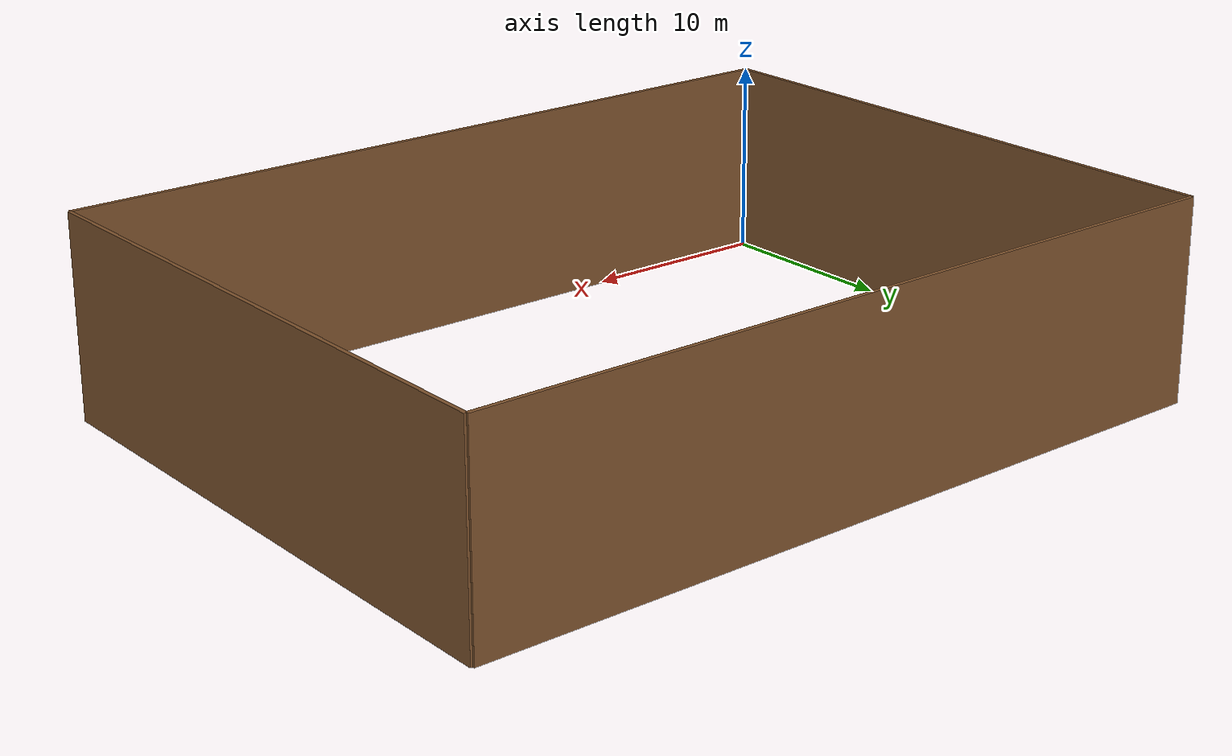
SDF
<?xml version="1.0" ?>
<sdf version="1.5">
  <model name="brownbrick_wall">
    <static>true</static>
    <link name="link_1">
      <pose>20 0 5 0 0 0</pose>
      <self_collide>0</self_collide>
      <kinematic>0</kinematic>
      <inertial>
        <inertia>
          <ixx>nan</ixx>
          <ixy>0</ixy>
          <ixz>0</ixz>
          <iyy>nan</iyy>
          <iyz>0</iyz>
          <izz>nan</izz>
        </inertia>
        <mass>0</mass>
        <pose frame=''>0 0 0 0 0 0</pose>
      </inertial>
      <visual name="visual_1">
        <cast_shadows>false</cast_shadows>
        <geometry>
          <box>
            <size>40 0.2 10</size>
          </box>
        </geometry>
        <material>
          <script>
            <uri>model://fixed/env_wall/brownbrick_wall/materials/scripts</uri>
            <uri>model://fixed/env_wall/brownbrick_wall/materials/textures</uri>
            <name>vrc/brownbrick_wall</name>
          </script>
          <ambient>1 0.764706 0.305882 1</ambient>
          <shader type='pixel'/>
          <diffuse>0.7 0.7 0.7 1</diffuse>
          <specular>0.01 0.01 0.01 1</specular>
          <emissive>0 0 0 1</emissive>
        </material>
      </visual>
      <collision name="collision_1">
        <laser_retro>0</laser_retro>
        <max_contacts>10</max_contacts>
        <geometry>
          <box>
            <size>40 0.2 10</size>
          </box>
        </geometry>
        <surface>
          <friction>
            <ode>
              <mu>1</mu>
              <mu2>1</mu2>
              <fdir1>0 0 0</fdir1>
              <slip1>0</slip1>
              <slip2>0</slip2>
            </ode>
            <torsional>
              <coefficient>1</coefficient>
              <patch_radius>0</patch_radius>
              <surface_radius>0</surface_radius>
              <use_patch_radius>1</use_patch_radius>
              <ode>
                <slip>0</slip>
              </ode>
            </torsional>
          </friction>
          <bounce>
            <restitution_coefficient>0</restitution_coefficient>
            <threshold>1e+06</threshold>
          </bounce>
          <contact>
            <collide_without_contact>0</collide_without_contact>
            <collide_without_contact_bitmask>1</collide_without_contact_bitmask>
            <collide_bitmask>1</collide_bitmask>
            <ode>
              <soft_cfm>0</soft_cfm>
              <soft_erp>0.2</soft_erp>
              <kp>1e+13</kp>
              <kd>1</kd>
              <max_vel>0.01</max_vel>
              <min_depth>0</min_depth>
            </ode>
            <bullet>
              <split_impulse>1</split_impulse>
              <split_impulse_penetration_threshold>-0.01</split_impulse_penetration_threshold>
              <soft_cfm>0</soft_cfm>
              <soft_erp>0.2</soft_erp>
              <kp>1e+13</kp>
              <kd>1</kd>
            </bullet>
          </contact>
        </surface>
      </collision>
    </link>

    <link name="link_2">
      <pose>20 30 5 0 0 0</pose>
      <self_collide>0</self_collide>
      <kinematic>0</kinematic>
      <inertial>
        <inertia>
          <ixx>nan</ixx>
          <ixy>0</ixy>
          <ixz>0</ixz>
          <iyy>nan</iyy>
          <iyz>0</iyz>
          <izz>nan</izz>
        </inertia>
        <mass>0</mass>
        <pose frame=''>0 0 0 0 0 0</pose>
      </inertial>
      <visual name="visual_2">
        <cast_shadows>false</cast_shadows>
        <geometry>
          <box>
            <size>40 0.2 10</size>
          </box>
        </geometry>
        <material>
          <script>
            <uri>model://fixed/env_wall/brownbrick_wall/materials/scripts</uri>
            <uri>model://fixed/env_wall/brownbrick_wall/materials/textures</uri>
            <name>vrc/brownbrick_wall</name>
          </script>
          <ambient>1 0.764706 0.305882 1</ambient>
          <shader type='pixel'/>
          <diffuse>0.7 0.7 0.7 1</diffuse>
          <specular>0.01 0.01 0.01 1</specular>
          <emissive>0 0 0 1</emissive>
        </material>
      </visual>
      <collision name="collision_2">
        <laser_retro>0</laser_retro>
        <max_contacts>10</max_contacts>
        <geometry>
          <box>
            <size>40 0.2 10</size>
          </box>
        </geometry>
        <surface>
          <friction>
            <ode>
              <mu>1</mu>
              <mu2>1</mu2>
              <fdir1>0 0 0</fdir1>
              <slip1>0</slip1>
              <slip2>0</slip2>
            </ode>
            <torsional>
              <coefficient>1</coefficient>
              <patch_radius>0</patch_radius>
              <surface_radius>0</surface_radius>
              <use_patch_radius>1</use_patch_radius>
              <ode>
                <slip>0</slip>
              </ode>
            </torsional>
          </friction>
          <bounce>
            <restitution_coefficient>0</restitution_coefficient>
            <threshold>1e+06</threshold>
          </bounce>
          <contact>
            <collide_without_contact>0</collide_without_contact>
            <collide_without_contact_bitmask>1</collide_without_contact_bitmask>
            <collide_bitmask>1</collide_bitmask>
            <ode>
              <soft_cfm>0</soft_cfm>
              <soft_erp>0.2</soft_erp>
              <kp>1e+13</kp>
              <kd>1</kd>
              <max_vel>0.01</max_vel>
              <min_depth>0</min_depth>
            </ode>
            <bullet>
              <split_impulse>1</split_impulse>
              <split_impulse_penetration_threshold>-0.01</split_impulse_penetration_threshold>
              <soft_cfm>0</soft_cfm>
              <soft_erp>0.2</soft_erp>
              <kp>1e+13</kp>
              <kd>1</kd>
            </bullet>
          </contact>
        </surface>
      </collision>
    </link>

    <link name="link_3">
      <pose>0 15 5 0 0 1.57</pose>
      <self_collide>0</self_collide>
      <kinematic>0</kinematic>
      <inertial>
        <inertia>
          <ixx>nan</ixx>
          <ixy>0</ixy>
          <ixz>0</ixz>
          <iyy>nan</iyy>
          <iyz>0</iyz>
          <izz>nan</izz>
        </inertia>
        <mass>0</mass>
        <pose frame=''>0 0 0 0 0 0</pose>
      </inertial>
      <visual name="visual_3">
        <cast_shadows>false</cast_shadows>
        <geometry>
          <box>
            <size>30 0.2 10</size>
          </box>
        </geometry>
        <material>
          <script>
            <uri>model://fixed/env_wall/brownbrick_wall/materials/scripts</uri>
            <uri>model://fixed/env_wall/brownbrick_wall/materials/textures</uri>
            <name>vrc/brownbrick_wall</name>
          </script>
          <ambient>1 0.764706 0.305882 1</ambient>
          <shader type='pixel'/>
          <diffuse>0.7 0.7 0.7 1</diffuse>
          <specular>0.01 0.01 0.01 1</specular>
          <emissive>0 0 0 1</emissive>
        </material>
      </visual>
      <collision name="collision_3">
        <laser_retro>0</laser_retro>
        <max_contacts>10</max_contacts>
        <geometry>
          <box>
            <size>30 0.2 10</size>
          </box>
        </geometry>
        <surface>
          <friction>
            <ode>
              <mu>1</mu>
              <mu2>1</mu2>
              <fdir1>0 0 0</fdir1>
              <slip1>0</slip1>
              <slip2>0</slip2>
            </ode>
            <torsional>
              <coefficient>1</coefficient>
              <patch_radius>0</patch_radius>
              <surface_radius>0</surface_radius>
              <use_patch_radius>1</use_patch_radius>
              <ode>
                <slip>0</slip>
              </ode>
            </torsional>
          </friction>
          <bounce>
            <restitution_coefficient>0</restitution_coefficient>
            <threshold>1e+06</threshold>
          </bounce>
          <contact>
            <collide_without_contact>0</collide_without_contact>
            <collide_without_contact_bitmask>1</collide_without_contact_bitmask>
            <collide_bitmask>1</collide_bitmask>
            <ode>
              <soft_cfm>0</soft_cfm>
              <soft_erp>0.2</soft_erp>
              <kp>1e+13</kp>
              <kd>1</kd>
              <max_vel>0.01</max_vel>
              <min_depth>0</min_depth>
            </ode>
            <bullet>
              <split_impulse>1</split_impulse>
              <split_impulse_penetration_threshold>-0.01</split_impulse_penetration_threshold>
              <soft_cfm>0</soft_cfm>
              <soft_erp>0.2</soft_erp>
              <kp>1e+13</kp>
              <kd>1</kd>
            </bullet>
          </contact>
        </surface>
      </collision>
    </link>

    <link name="link_4">
      <pose>40 15 5 0 0 1.57</pose>
      <self_collide>0</self_collide>
      <kinematic>0</kinematic>
      <inertial>
        <inertia>
          <ixx>nan</ixx>
          <ixy>0</ixy>
          <ixz>0</ixz>
          <iyy>nan</iyy>
          <iyz>0</iyz>
          <izz>nan</izz>
        </inertia>
        <mass>0</mass>
        <pose frame=''>0 0 0 0 0 0</pose>
      </inertial>
      <visual name="visual_4">
        <cast_shadows>false</cast_shadows>
        <geometry>
          <box>
            <size>30 0.2 10</size>
          </box>
        </geometry>
        <material>
          <script>
            <uri>model://fixed/env_wall/brownbrick_wall/materials/scripts</uri>
            <uri>model://fixed/env_wall/brownbrick_wall/materials/textures</uri>
            <name>vrc/brownbrick_wall</name>
          </script>
          <ambient>1 0.764706 0.305882 1</ambient>
          <shader type='pixel'/>
          <diffuse>0.7 0.7 0.7 1</diffuse>
          <specular>0.01 0.01 0.01 1</specular>
          <emissive>0 0 0 1</emissive>
        </material>
      </visual>
      <collision name="collision_4">
        <laser_retro>0</laser_retro>
        <max_contacts>10</max_contacts>
        <geometry>
          <box>
            <size>30 0.2 10</size>
          </box>
        </geometry>
        <surface>
          <friction>
            <ode>
              <mu>1</mu>
              <mu2>1</mu2>
              <fdir1>0 0 0</fdir1>
              <slip1>0</slip1>
              <slip2>0</slip2>
            </ode>
            <torsional>
              <coefficient>1</coefficient>
              <patch_radius>0</patch_radius>
              <surface_radius>0</surface_radius>
              <use_patch_radius>1</use_patch_radius>
              <ode>
                <slip>0</slip>
              </ode>
            </torsional>
          </friction>
          <bounce>
            <restitution_coefficient>0</restitution_coefficient>
            <threshold>1e+06</threshold>
          </bounce>
          <contact>
            <collide_without_contact>0</collide_without_contact>
            <collide_without_contact_bitmask>1</collide_without_contact_bitmask>
            <collide_bitmask>1</collide_bitmask>
            <ode>
              <soft_cfm>0</soft_cfm>
              <soft_erp>0.2</soft_erp>
              <kp>1e+13</kp>
              <kd>1</kd>
              <max_vel>0.01</max_vel>
              <min_depth>0</min_depth>
            </ode>
            <bullet>
              <split_impulse>1</split_impulse>
              <split_impulse_penetration_threshold>-0.01</split_impulse_penetration_threshold>
              <soft_cfm>0</soft_cfm>
              <soft_erp>0.2</soft_erp>
              <kp>1e+13</kp>
              <kd>1</kd>
            </bullet>
          </contact>
        </surface>
      </collision>
    </link>
  </model>
</sdf>
